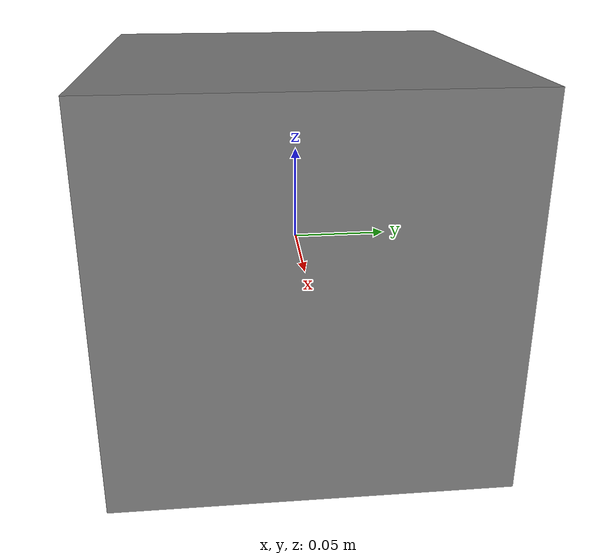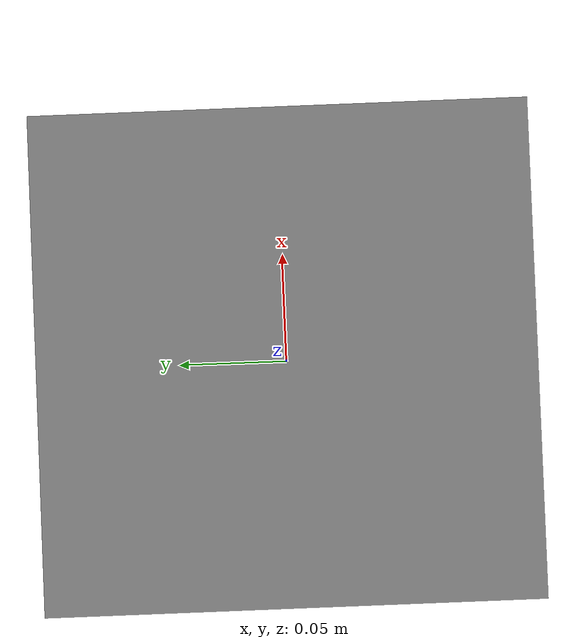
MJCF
<mujoco model="geoms">
    <compiler inertiagrouprange="2 3" inertiafromgeom="false"/>
    <default>
        <geom density="1000"/>
    </default>
    <worldbody>
        <body name="geom_body">
            <!-- Physics -->
            <geom name="visual_with_mass" type="sphere" size="0.1" contype="0" conaffinity="0" group="2" mass="5.0"/>
            <geom name="visual_with_density" type="sphere" size="0.1" contype="0" conaffinity="0" group="2" density="2000"/>
            <geom name="visual_in_range_no_mass" type="sphere" size="0.1" contype="0" conaffinity="0" group="2"/>
            <geom name="explicit_mass" type="box" size="0.1 0.1 0.1" mass="10.0"/>
            <geom name="explicit_density" type="box" size="0.1 0.1 0.1" density="3000"/>
        </body>
    </worldbody>
</mujoco>
